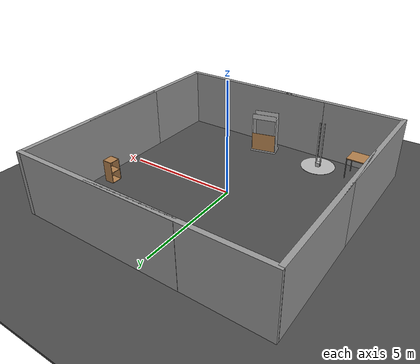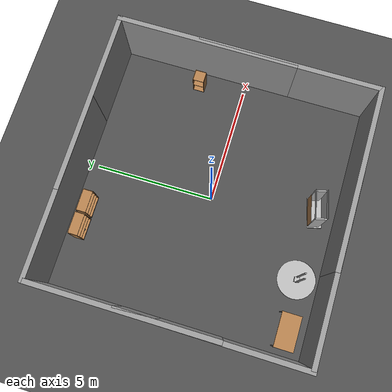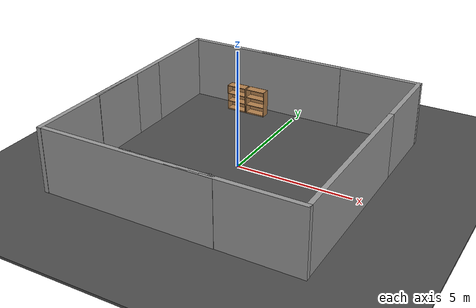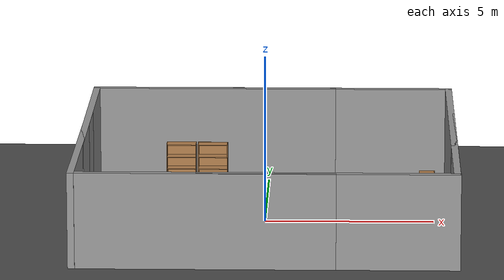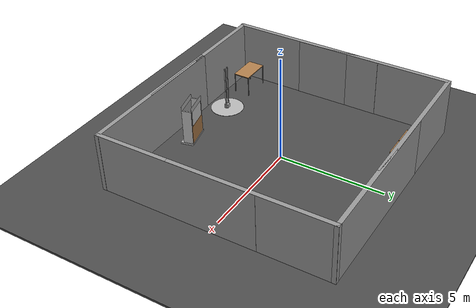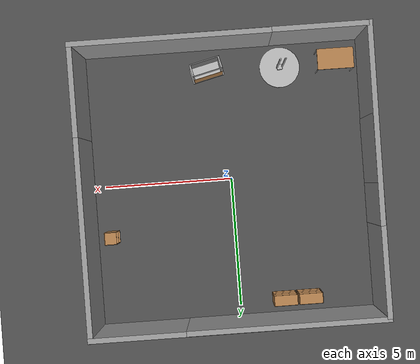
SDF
<sdf version="1.6">
 <world name="default">
  <light name="sun" type="directional">
   <pose>0 0 15 0 -0 0</pose>
   <diffuse>1 1 1 1</diffuse>
   <specular>0.1 0.1 0.1 1</specular>
   <attenuation>
    <range>1000</range>
    <constant>0.9</constant>
    <linear>0.01</linear>
    <quadratic>0.001</quadratic>
   </attenuation>
   <direction>-0.5 0.5 -1</direction>
  </light>
  <model name="ground_plane">
   <static>1</static>
   <link name="link">
    <collision name="collision">
     <geometry><plane><normal>0 0 1</normal><size>100 100</size></plane></geometry>
     <surface><friction><ode><mu>100</mu><mu2>50</mu2></ode></friction></surface>
    </collision>
    <visual name="visual">
     <transparency>1</transparency>
     <cast_shadows>0</cast_shadows>
     <geometry><plane><normal>0 0 1</normal><size>100 100</size></plane></geometry>
     <material>
      <script><uri>file://media/materials/scripts/gazebo.material</uri><name>Gazebo/Grey</name></script>
     </material>
    </visual>
   </link>
  </model>
  <gravity>0 0 -9.8</gravity>
  <magnetic_field>6e-06 2.3e-05 -4.2e-05</magnetic_field>
  <atmosphere type="adiabatic"/>
  <physics name="default_physics" default="0" type="ode">
   <max_step_size>0.001</max_step_size>
   <real_time_factor>1</real_time_factor>
   <real_time_update_rate>1000</real_time_update_rate>
  </physics>
  <scene><ambient>0.4 0.4 0.4 1</ambient><background>0.7 0.7 0.7 1</background><shadows>1</shadows></scene>
  <spherical_coordinates>
   <surface_model>EARTH_WGS84</surface_model>
   <latitude_deg>0</latitude_deg>
   <longitude_deg>0</longitude_deg>
   <elevation>0</elevation>
   <heading_deg>0</heading_deg>
  </spherical_coordinates>
  <model name="asphalt_plane">
   <static>1</static>
   <link name="link">
    <collision name="collision"><geometry><box><size>36.1545 36.4545 0.1</size></box></geometry></collision>
    <visual name="visual">
     <cast_shadows>0</cast_shadows>
     <geometry><box><size>36.1545 36.4545 0.1</size></box></geometry>
     <material>
      <script>
       <uri>model://asphalt_plane/materials/scripts</uri>
       <uri>model://asphalt_plane/materials/textures</uri>
       <name>vrc/asphalt</name>
      </script>
     </material>
    </visual>
   </link>
   <pose>0.103613 0.066968 -0.05 0 -0 0</pose>
  </model>
  <model name="table">
   <static>0</static>
   <link name="link">
    <collision name="surface">
     <pose>0 0 1 0 -0 0</pose>
     <geometry><box><size>1.5 0.8 0.03</size></box></geometry>
     <surface><friction><ode><mu>0.6</mu><mu2>0.6</mu2></ode></friction></surface>
    </collision>
    <visual name="visual1">
     <pose>0 0 1 0 -0 0</pose>
     <geometry><box><size>1.4 0.8 0.04</size></box></geometry>
     <material>
      <script><uri>file://media/materials/scripts/gazebo.material</uri><name>Gazebo/Wood</name></script>
     </material>
    </visual>
    <collision name="front_left_leg">
     <pose>0.68 0.38 0.5 0 -0 0</pose>
     <geometry><cylinder><radius>0.02</radius><length>1</length></cylinder></geometry>
    </collision>
    <visual name="front_left_leg">
     <pose>0.68 0.38 0.5 0 -0 0</pose>
     <geometry><cylinder><radius>0.02</radius><length>1</length></cylinder></geometry>
     <material>
      <script><uri>file://media/materials/scripts/gazebo.material</uri><name>Gazebo/Grey</name></script>
     </material>
    </visual>
    <collision name="front_right_leg">
     <pose>0.68 -0.38 0.5 0 -0 0</pose>
     <geometry><cylinder><radius>0.02</radius><length>1</length></cylinder></geometry>
    </collision>
    <visual name="front_right_leg">
     <pose>0.68 -0.38 0.5 0 -0 0</pose>
     <geometry><cylinder><radius>0.02</radius><length>1</length></cylinder></geometry>
     <material>
      <script><uri>file://media/materials/scripts/gazebo.material</uri><name>Gazebo/Grey</name></script>
     </material>
    </visual>
    <collision name="back_right_leg">
     <pose>-0.68 -0.38 0.5 0 -0 0</pose>
     <geometry><cylinder><radius>0.02</radius><length>1</length></cylinder></geometry>
    </collision>
    <visual name="back_right_leg">
     <pose>-0.68 -0.38 0.5 0 -0 0</pose>
     <geometry><cylinder><radius>0.02</radius><length>1</length></cylinder></geometry>
     <material>
      <script><uri>file://media/materials/scripts/gazebo.material</uri><name>Gazebo/Grey</name></script>
     </material>
    </visual>
    <collision name="back_left_leg">
     <pose>-0.68 0.38 0.5 0 -0 0</pose>
     <geometry><cylinder><radius>0.02</radius><length>1</length></cylinder></geometry>
    </collision>
    <visual name="back_left_leg">
     <pose>-0.68 0.38 0.5 0 -0 0</pose>
     <geometry><cylinder><radius>0.02</radius><length>1</length></cylinder></geometry>
     <material>
      <script><uri>file://media/materials/scripts/gazebo.material</uri><name>Gazebo/Grey</name></script>
     </material>
    </visual>
    <inertial>
     <inertia><ixx>1</ixx><ixy>0</ixy><ixz>0</ixz><iyy>1</iyy><iyz>0</iyz><izz>1</izz></inertia>
     <mass>1</mass>
    </inertial>
   </link>
   <pose>-4.32084 -4.34806 0 0 0 -0.002675</pose>
  </model>
  <model name="stone_10_2_5_1cm">
   <link name="link">
    <pose>0 0 0.005 0 -0 0</pose>
    <inertial>
     <mass>0.0628</mass>
     <inertia>
      <ixx>3.79417e-06</ixx>
      <ixy>0</ixy>
      <ixz>0</ixz>
      <iyy>5.28567e-05</iyy>
      <iyz>0</iyz>
      <izz>5.56042e-05</izz>
     </inertia>
    </inertial>
    <collision name="collision">
     <geometry><box><size>0.1 0.025 0.01</size></box></geometry>
     <surface>
      <contact>
       <poissons_ratio>0.15</poissons_ratio>
       <elastic_modulus>8e+10</elastic_modulus>
       <ode><kp>100000</kp><kd>100</kd><max_vel>100</max_vel><min_depth>0.001</min_depth></ode>
      </contact>
      <friction>
       <torsional>
        <coefficient>1</coefficient>
        <use_patch_radius>0</use_patch_radius>
        <surface_radius>0.01</surface_radius>
       </torsional>
      </friction>
     </surface>
    </collision>
    <visual name="visual">
     <geometry><box><size>0.1 0.025 0.01</size></box></geometry>
     <material>
      <script><uri>file://media/materials/scripts/gazebo.material</uri><name>Gazebo/Grey</name></script>
     </material>
    </visual>
   </link>
   <pose>8.5e-05 0.000215 -0.001001 0 1e-06 0.002859</pose>
  </model>
  <model name="beer">
   <link name="link">
    <pose>0 0 0.115 0 -0 0</pose>
    <inertial>
     <mass>0.39</mass>
     <inertia><ixx>0.00058</ixx><ixy>0</ixy><ixz>0</ixz><iyy>0.00058</iyy><iyz>0</iyz><izz>0.00019</izz></inertia>
    </inertial>
    <collision name="collision">
     <geometry><cylinder><radius>0.055</radius><length>0.23</length></cylinder></geometry>
    </collision>
    <visual name="visual">
     <geometry><cylinder><radius>0.055</radius><length>0.23</length></cylinder></geometry>
     <material>
      <script>
       <uri>model://beer/materials/scripts</uri>
       <uri>model://beer/materials/textures</uri>
       <name>Beer/Diffuse</name>
      </script>
     </material>
    </visual>
   </link>
   <pose>-2.7677 4.70917 0.060005 2.4e-05 9.1e-05 1.60843</pose>
  </model>
  <model name="bookshelf">
   <static>1</static>
   <link name="link">
    <inertial><mass>1</mass></inertial>
    <collision name="back">
     <pose>0 0.005 0.6 0 -0 0</pose>
     <geometry><box><size>0.9 0.01 1.2</size></box></geometry>
    </collision>
    <visual name="visual1">
     <pose>0 0.005 0.6 0 -0 0</pose>
     <geometry><box><size>0.9 0.01 1.2</size></box></geometry>
     <material>
      <script><uri>file://media/materials/scripts/gazebo.material</uri><name>Gazebo/Wood</name></script>
     </material>
    </visual>
    <collision name="left_side">
     <pose>0.45 -0.195 0.6 0 -0 0</pose>
     <geometry><box><size>0.02 0.4 1.2</size></box></geometry>
    </collision>
    <visual name="visual2">
     <pose>0.45 -0.195 0.6 0 -0 0</pose>
     <geometry><box><size>0.02 0.4 1.2</size></box></geometry>
     <material>
      <script><uri>file://media/materials/scripts/gazebo.material</uri><name>Gazebo/Wood</name></script>
     </material>
    </visual>
    <collision name="right_side">
     <pose>-0.45 -0.195 0.6 0 -0 0</pose>
     <geometry><box><size>0.02 0.4 1.2</size></box></geometry>
    </collision>
    <visual name="visual3">
     <pose>-0.45 -0.195 0.6 0 -0 0</pose>
     <geometry><box><size>0.02 0.4 1.2</size></box></geometry>
     <material>
      <script><uri>file://media/materials/scripts/gazebo.material</uri><name>Gazebo/Wood</name></script>
     </material>
    </visual>
    <collision name="bottom">
     <pose>0 -0.195 0.03 0 -0 0</pose>
     <geometry><box><size>0.88 0.4 0.06</size></box></geometry>
    </collision>
    <visual name="visual4">
     <pose>0 -0.195 0.03 0 -0 0</pose>
     <geometry><box><size>0.88 0.4 0.06</size></box></geometry>
     <material>
      <script><uri>file://media/materials/scripts/gazebo.material</uri><name>Gazebo/Wood</name></script>
     </material>
    </visual>
    <collision name="top">
     <pose>0 -0.195 1.19 0 -0 0</pose>
     <geometry><box><size>0.88 0.4 0.02</size></box></geometry>
    </collision>
    <visual name="visual5">
     <pose>0 -0.195 1.19 0 -0 0</pose>
     <geometry><box><size>0.88 0.4 0.02</size></box></geometry>
     <material>
      <script><uri>file://media/materials/scripts/gazebo.material</uri><name>Gazebo/Wood</name></script>
     </material>
    </visual>
    <collision name="low_shelf">
     <pose>0 -0.195 0.43 0 -0 0</pose>
     <geometry><box><size>0.88 0.4 0.02</size></box></geometry>
    </collision>
    <visual name="visual6">
     <pose>0 -0.195 0.43 0 -0 0</pose>
     <geometry><box><size>0.88 0.4 0.02</size></box></geometry>
     <material>
      <script><uri>file://media/materials/scripts/gazebo.material</uri><name>Gazebo/Wood</name></script>
     </material>
    </visual>
    <collision name="high_shelf">
     <pose>0 -0.195 0.8 0 -0 0</pose>
     <geometry><box><size>0.88 0.4 0.02</size></box></geometry>
    </collision>
    <visual name="visual7">
     <pose>0 -0.195 0.8 0 -0 0</pose>
     <geometry><box><size>0.88 0.4 0.02</size></box></geometry>
     <material>
      <script><uri>file://media/materials/scripts/gazebo.material</uri><name>Gazebo/Wood</name></script>
     </material>
    </visual>
   </link>
   <pose>-1.74722 4.98525 0 0 -0 0</pose>
  </model>
  <model name="bookshelf_0">
   <static>1</static>
   <link name="link">
    <inertial><mass>1</mass></inertial>
    <collision name="back">
     <pose>0 0.005 0.6 0 -0 0</pose>
     <geometry><box><size>0.9 0.01 1.2</size></box></geometry>
    </collision>
    <visual name="visual1">
     <pose>0 0.005 0.6 0 -0 0</pose>
     <geometry><box><size>0.9 0.01 1.2</size></box></geometry>
     <material>
      <script><uri>file://media/materials/scripts/gazebo.material</uri><name>Gazebo/Wood</name></script>
     </material>
    </visual>
    <collision name="left_side">
     <pose>0.45 -0.195 0.6 0 -0 0</pose>
     <geometry><box><size>0.02 0.4 1.2</size></box></geometry>
    </collision>
    <visual name="visual2">
     <pose>0.45 -0.195 0.6 0 -0 0</pose>
     <geometry><box><size>0.02 0.4 1.2</size></box></geometry>
     <material>
      <script><uri>file://media/materials/scripts/gazebo.material</uri><name>Gazebo/Wood</name></script>
     </material>
    </visual>
    <collision name="right_side">
     <pose>-0.45 -0.195 0.6 0 -0 0</pose>
     <geometry><box><size>0.02 0.4 1.2</size></box></geometry>
    </collision>
    <visual name="visual3">
     <pose>-0.45 -0.195 0.6 0 -0 0</pose>
     <geometry><box><size>0.02 0.4 1.2</size></box></geometry>
     <material>
      <script><uri>file://media/materials/scripts/gazebo.material</uri><name>Gazebo/Wood</name></script>
     </material>
    </visual>
    <collision name="bottom">
     <pose>0 -0.195 0.03 0 -0 0</pose>
     <geometry><box><size>0.88 0.4 0.06</size></box></geometry>
    </collision>
    <visual name="visual4">
     <pose>0 -0.195 0.03 0 -0 0</pose>
     <geometry><box><size>0.88 0.4 0.06</size></box></geometry>
     <material>
      <script><uri>file://media/materials/scripts/gazebo.material</uri><name>Gazebo/Wood</name></script>
     </material>
    </visual>
    <collision name="top">
     <pose>0 -0.195 1.19 0 -0 0</pose>
     <geometry><box><size>0.88 0.4 0.02</size></box></geometry>
    </collision>
    <visual name="visual5">
     <pose>0 -0.195 1.19 0 -0 0</pose>
     <geometry><box><size>0.88 0.4 0.02</size></box></geometry>
     <material>
      <script><uri>file://media/materials/scripts/gazebo.material</uri><name>Gazebo/Wood</name></script>
     </material>
    </visual>
    <collision name="low_shelf">
     <pose>0 -0.195 0.43 0 -0 0</pose>
     <geometry><box><size>0.88 0.4 0.02</size></box></geometry>
    </collision>
    <visual name="visual6">
     <pose>0 -0.195 0.43 0 -0 0</pose>
     <geometry><box><size>0.88 0.4 0.02</size></box></geometry>
     <material>
      <script><uri>file://media/materials/scripts/gazebo.material</uri><name>Gazebo/Wood</name></script>
     </material>
    </visual>
    <collision name="high_shelf">
     <pose>0 -0.195 0.8 0 -0 0</pose>
     <geometry><box><size>0.88 0.4 0.02</size></box></geometry>
    </collision>
    <visual name="visual7">
     <pose>0 -0.195 0.8 0 -0 0</pose>
     <geometry><box><size>0.88 0.4 0.02</size></box></geometry>
     <material>
      <script><uri>file://media/materials/scripts/gazebo.material</uri><name>Gazebo/Wood</name></script>
     </material>
    </visual>
   </link>
   <pose>-2.71562 4.98367 0 0 -0 0</pose>
  </model>
  <model name="frc2016_drawbridge_0">
   <link name="base">
    <inertial>
     <mass>10</mass>
     <pose>0 0 1 0 -0 0</pose>
     <inertia><ixx>3.64907</ixx><ixy>0</ixy><ixz>0</ixz><iyy>4.67075</iyy><iyz>0</iyz><izz>1.66649</izz></inertia>
    </inertial>
    <visual name="platform">
     <pose>0 0 0.0425 0 -0 0</pose>
     <geometry><box><size>1.27 0.5969 0.085</size></box></geometry>
    </visual>
    <collision name="platform">
     <pose>0 0 0.0425 0 -0 0</pose>
     <geometry><box><size>1.27 0.5969 0.085</size></box></geometry>
    </collision>
    <visual name="right_wall">
     <pose>0.55879 0.04444 0.889 0 -0 0</pose>
     <geometry><box><size>0.05715 0.45698 1.77165</size></box></geometry>
    </visual>
    <collision name="right_wall">
     <pose>0.55879 0.04444 0.889 0 -0 0</pose>
     <geometry><box><size>0.05715 0.45698 1.77165</size></box></geometry>
    </collision>
    <visual name="left_wall">
     <pose>-0.55879 0.04444 0.889 0 -0 0</pose>
     <geometry><box><size>0.05715 0.45698 1.77165</size></box></geometry>
    </visual>
    <collision name="left_wall">
     <pose>-0.55879 0.04444 0.889 0 -0 0</pose>
     <geometry><box><size>0.05715 0.45698 1.77165</size></box></geometry>
    </collision>
    <visual name="front_upper_wall">
     <pose>0 0.27611 1.84286 0 -0 0</pose>
     <geometry><box><size>1.1557 0.006347 0.254</size></box></geometry>
    </visual>
    <collision name="front_upper_wall">
     <pose>0 0.27611 1.84286 0 -0 0</pose>
     <geometry><box><size>1.1557 0.006347 0.254</size></box></geometry>
    </collision>
    <visual name="back_upper_wall">
     <pose>0 -0.18722 1.84286 0 -0 0</pose>
     <geometry><box><size>1.1557 0.006347 0.254</size></box></geometry>
    </visual>
    <collision name="back_upper_wall">
     <pose>0 -0.18722 1.84286 0 -0 0</pose>
     <geometry><box><size>1.1557 0.006347 0.254</size></box></geometry>
    </collision>
   </link>
   <link name="bridge">
    <pose>0 0.28245 0.50577 0 -0 0</pose>
    <inertial>
     <mass>2</mass>
     <pose>0 -0.28245 -0.50577 0 -0 0</pose>
     <inertia>
      <ixx>0.139361</ixx>
      <ixy>0</ixy>
      <ixz>0</ixz>
      <iyy>0.357088</iyy>
      <iyz>0</iyz>
      <izz>0.217741</izz>
     </inertia>
    </inertial>
    <visual name="visual">
     <geometry><box><size>1.14298 0.006347 0.9144</size></box></geometry>
     <material><script><name>Gazebo/WoodFloor</name><uri>__default__</uri></script></material>
    </visual>
    <collision name="collision"><geometry><box><size>1.14298 0.006347 0.9144</size></box></geometry></collision>
   </link>
   <joint name="bridge_joint" type="revolute">
    <pose>0 0 -0.4172 0 -0 0</pose>
    <parent>base</parent>
    <child>bridge</child>
    <axis>
     <xyz>1 0 0</xyz>
     <limit><lower>-2</lower><upper>0</upper></limit>
     <use_parent_model_frame>0</use_parent_model_frame>
     <dynamics><spring_reference>0</spring_reference><spring_stiffness>0</spring_stiffness></dynamics>
    </axis>
   </joint>
   <pose>0.67521 -4.30878 0 0 1e-06 0.236017</pose>
  </model>
  <model name="cabinet">
   <static>1</static>
   <link name="cabinet_bottom_plate">
    <inertial>
     <pose>0 0 -1 0 -0 0</pose>
     <inertia><ixx>2.05</ixx><ixy>0</ixy><ixz>0</ixz><iyy>2.05</iyy><iyz>0</iyz><izz>2.05</izz></inertia>
     <mass>25</mass>
    </inertial>
    <collision name="cabinet_bottom_plate_geom">
     <pose>0 0 0.01 0 -0 0</pose>
     <geometry><box><size>0.45 0.45 0.02</size></box></geometry>
    </collision>
    <visual name="cabinet_bottom_plate_geom_visual">
     <pose>0 0 0.01 0 -0 0</pose>
     <geometry><box><size>0.45 0.45 0.02</size></box></geometry>
     <material>
      <script><uri>file://media/materials/scripts/gazebo.material</uri><name>Gazebo/Wood</name></script>
     </material>
    </visual>
    <collision name="cabinet_bottom_plate_geom_cabinet_back_plate">
     <pose>0.235 0 0.51 0 -0 0</pose>
     <geometry><box><size>0.02 0.45 1.02</size></box></geometry>
    </collision>
    <visual name="cabinet_bottom_plate_geom_cabinet_back_plate_visual">
     <pose>0.235 0 0.51 0 -0 0</pose>
     <geometry><box><size>0.02 0.45 1.02</size></box></geometry>
     <material>
      <script><uri>file://media/materials/scripts/gazebo.material</uri><name>Gazebo/Wood</name></script>
     </material>
    </visual>
    <collision name="cabinet_bottom_plate_geom_cabinet_left_plate">
     <pose>0 0.235 0.51 0 -0 0</pose>
     <geometry><box><size>0.45 0.02 1.02</size></box></geometry>
    </collision>
    <visual name="cabinet_bottom_plate_geom_cabinet_left_plate_visual">
     <pose>0 0.235 0.51 0 -0 0</pose>
     <geometry><box><size>0.45 0.02 1.02</size></box></geometry>
     <material>
      <script><uri>file://media/materials/scripts/gazebo.material</uri><name>Gazebo/Wood</name></script>
     </material>
    </visual>
    <collision name="cabinet_bottom_plate_geom_cabinet_middle_plate">
     <pose>0 0 0.51 0 -0 0</pose>
     <geometry><box><size>0.45 0.45 0.02</size></box></geometry>
    </collision>
    <visual name="cabinet_bottom_plate_geom_cabinet_middle_plate_visual">
     <pose>0 0 0.51 0 -0 0</pose>
     <geometry><box><size>0.45 0.45 0.02</size></box></geometry>
     <material>
      <script><uri>file://media/materials/scripts/gazebo.material</uri><name>Gazebo/Wood</name></script>
     </material>
    </visual>
    <collision name="cabinet_bottom_plate_geom_cabinet_right_plate">
     <pose>0 -0.235 0.51 0 -0 0</pose>
     <geometry><box><size>0.45 0.02 1.02</size></box></geometry>
    </collision>
    <visual name="cabinet_bottom_plate_geom_cabinet_right_plate_visual">
     <pose>0 -0.235 0.51 0 -0 0</pose>
     <geometry><box><size>0.45 0.02 1.02</size></box></geometry>
     <material>
      <script><uri>file://media/materials/scripts/gazebo.material</uri><name>Gazebo/Wood</name></script>
     </material>
    </visual>
    <collision name="cabinet_bottom_plate_geom_cabinet_top_plate">
     <pose>0 0 1.01 0 -0 0</pose>
     <geometry><box><size>0.45 0.45 0.02</size></box></geometry>
    </collision>
    <visual name="cabinet_bottom_plate_geom_cabinet_top_plate_visual">
     <pose>0 0 1.01 0 -0 0</pose>
     <geometry><box><size>0.45 0.45 0.02</size></box></geometry>
     <material>
      <script><uri>file://media/materials/scripts/gazebo.material</uri><name>Gazebo/Wood</name></script>
     </material>
    </visual>
   </link>
   <pose>4.81488 1.96092 0 0 -0 0</pose>
  </model>
  <model name="grey_wall_clone_0">
   <link name="link">
    <pose>0 0 1.4 0 -0 0</pose>
    <inertial>
     <mass>1</mass>
     <inertia><ixx>1</ixx><ixy>0</ixy><ixz>0</ixz><iyy>1</iyy><iyz>0</iyz><izz>1</izz></inertia>
    </inertial>
    <visual name="visual">
     <cast_shadows>0</cast_shadows>
     <geometry><box><size>7.5 0.2 2.8</size></box></geometry>
     <material>
      <script>
       <uri>model://grey_wall/materials/scripts</uri>
       <uri>model://grey_wall/materials/textures</uri>
       <name>vrc/grey_wall</name>
      </script>
      <ambient>0 0 0 1</ambient>
      <diffuse>0 0 0 1</diffuse>
      <specular>0 0 0 1</specular>
      <emissive>0 0 0 1</emissive>
      <shader type="vertex"><normal_map>__default__</normal_map></shader>
     </material>
    </visual>
    <collision name="collision">
     <geometry><box><size>7.5 0.2 2.8</size></box></geometry>
     <surface>
      <friction>
       <ode><mu>1</mu><mu2>1</mu2><fdir1>0 0 0</fdir1><slip1>0</slip1><slip2>0</slip2></ode>
       <torsional>
        <coefficient>1</coefficient>
        <patch_radius>0</patch_radius>
        <surface_radius>0</surface_radius>
        <use_patch_radius>1</use_patch_radius>
        <ode><slip>0</slip></ode>
       </torsional>
      </friction>
      <bounce><restitution_coefficient>0</restitution_coefficient><threshold>1e+06</threshold></bounce>
      <contact>
       <collide_without_contact>0</collide_without_contact>
       <collide_without_contact_bitmask>1</collide_without_contact_bitmask>
       <collide_bitmask>1</collide_bitmask>
       <ode>
        <soft_cfm>0</soft_cfm>
        <soft_erp>0.2</soft_erp>
        <kp>1e+13</kp>
        <kd>1</kd>
        <max_vel>0.01</max_vel>
        <min_depth>0</min_depth>
       </ode>
       <bullet>
        <split_impulse>1</split_impulse>
        <split_impulse_penetration_threshold>-0.01</split_impulse_penetration_threshold>
        <soft_cfm>0</soft_cfm>
        <soft_erp>0.2</soft_erp>
        <kp>1e+13</kp>
        <kd>1</kd>
       </bullet>
      </contact>
     </surface>
    </collision>
   </link>
   <static>1</static>
   <pose>1.91177 -5.27965 0 0 -0 0</pose>
  </model>
  <model name="grey_wall_2">
   <link name="link">
    <pose>0 0 1.4 0 -0 0</pose>
    <inertial>
     <mass>1</mass>
     <inertia><ixx>1</ixx><ixy>0</ixy><ixz>0</ixz><iyy>1</iyy><iyz>0</iyz><izz>1</izz></inertia>
    </inertial>
    <visual name="visual">
     <cast_shadows>0</cast_shadows>
     <geometry><box><size>7.5 0.2 2.8</size></box></geometry>
     <material>
      <script>
       <uri>model://grey_wall/materials/scripts</uri>
       <uri>model://grey_wall/materials/textures</uri>
       <name>vrc/grey_wall</name>
      </script>
      <ambient>0 0 0 1</ambient>
      <diffuse>0 0 0 1</diffuse>
      <specular>0 0 0 1</specular>
      <emissive>0 0 0 1</emissive>
      <shader type="vertex"><normal_map>__default__</normal_map></shader>
     </material>
    </visual>
    <collision name="collision">
     <geometry><box><size>7.5 0.2 2.8</size></box></geometry>
     <surface>
      <friction>
       <ode><mu>1</mu><mu2>1</mu2><fdir1>0 0 0</fdir1><slip1>0</slip1><slip2>0</slip2></ode>
       <torsional>
        <coefficient>1</coefficient>
        <patch_radius>0</patch_radius>
        <surface_radius>0</surface_radius>
        <use_patch_radius>1</use_patch_radius>
        <ode><slip>0</slip></ode>
       </torsional>
      </friction>
      <bounce><restitution_coefficient>0</restitution_coefficient><threshold>1e+06</threshold></bounce>
      <contact>
       <collide_without_contact>0</collide_without_contact>
       <collide_without_contact_bitmask>1</collide_without_contact_bitmask>
       <collide_bitmask>1</collide_bitmask>
       <ode>
        <soft_cfm>0</soft_cfm>
        <soft_erp>0.2</soft_erp>
        <kp>1e+13</kp>
        <kd>1</kd>
        <max_vel>0.01</max_vel>
        <min_depth>0</min_depth>
       </ode>
       <bullet>
        <split_impulse>1</split_impulse>
        <split_impulse_penetration_threshold>-0.01</split_impulse_penetration_threshold>
        <soft_cfm>0</soft_cfm>
        <soft_erp>0.2</soft_erp>
        <kp>1e+13</kp>
        <kd>1</kd>
       </bullet>
      </contact>
     </surface>
    </collision>
   </link>
   <static>1</static>
   <pose>-1.62156 -5.28936 0 0 -0 0</pose>
  </model>
  <model name="grey_wall_1_clone_clone_0">
   <link name="link">
    <pose>0 0 1.4 0 -0 0</pose>
    <inertial>
     <mass>1</mass>
     <inertia><ixx>1</ixx><ixy>0</ixy><ixz>0</ixz><iyy>1</iyy><iyz>0</iyz><izz>1</izz></inertia>
    </inertial>
    <visual name="visual">
     <cast_shadows>0</cast_shadows>
     <geometry><box><size>7.5 0.2 2.8</size></box></geometry>
     <material>
      <script>
       <uri>model://grey_wall/materials/scripts</uri>
       <uri>model://grey_wall/materials/textures</uri>
       <name>vrc/grey_wall</name>
      </script>
      <ambient>0 0 0 1</ambient>
      <diffuse>0 0 0 1</diffuse>
      <specular>0 0 0 1</specular>
      <emissive>0 0 0 1</emissive>
      <shader type="vertex"><normal_map>__default__</normal_map></shader>
     </material>
    </visual>
    <collision name="collision">
     <geometry><box><size>7.5 0.2 2.8</size></box></geometry>
     <surface>
      <friction>
       <ode><mu>1</mu><mu2>1</mu2><fdir1>0 0 0</fdir1><slip1>0</slip1><slip2>0</slip2></ode>
       <torsional>
        <coefficient>1</coefficient>
        <patch_radius>0</patch_radius>
        <surface_radius>0</surface_radius>
        <use_patch_radius>1</use_patch_radius>
        <ode><slip>0</slip></ode>
       </torsional>
      </friction>
      <bounce><restitution_coefficient>0</restitution_coefficient><threshold>1e+06</threshold></bounce>
      <contact>
       <collide_without_contact>0</collide_without_contact>
       <collide_without_contact_bitmask>1</collide_without_contact_bitmask>
       <collide_bitmask>1</collide_bitmask>
       <ode>
        <soft_cfm>0</soft_cfm>
        <soft_erp>0.2</soft_erp>
        <kp>1e+13</kp>
        <kd>1</kd>
        <max_vel>0.01</max_vel>
        <min_depth>0</min_depth>
       </ode>
       <bullet>
        <split_impulse>1</split_impulse>
        <split_impulse_penetration_threshold>-0.01</split_impulse_penetration_threshold>
        <soft_cfm>0</soft_cfm>
        <soft_erp>0.2</soft_erp>
        <kp>1e+13</kp>
        <kd>1</kd>
       </bullet>
      </contact>
     </surface>
    </collision>
   </link>
   <static>1</static>
   <pose>-5.37299 -1.64933 0 0 -0 1.5651</pose>
  </model>
  <model name="grey_wall_1_clone_clone_clone_0">
   <link name="link">
    <pose>0 0 1.4 0 -0 0</pose>
    <inertial>
     <mass>1</mass>
     <inertia><ixx>1</ixx><ixy>0</ixy><ixz>0</ixz><iyy>1</iyy><iyz>0</iyz><izz>1</izz></inertia>
    </inertial>
    <visual name="visual">
     <cast_shadows>0</cast_shadows>
     <geometry><box><size>7.5 0.2 2.8</size></box></geometry>
     <material>
      <script>
       <uri>model://grey_wall/materials/scripts</uri>
       <uri>model://grey_wall/materials/textures</uri>
       <name>vrc/grey_wall</name>
      </script>
      <ambient>0 0 0 1</ambient>
      <diffuse>0 0 0 1</diffuse>
      <specular>0 0 0 1</specular>
      <emissive>0 0 0 1</emissive>
      <shader type="vertex"><normal_map>__default__</normal_map></shader>
     </material>
    </visual>
    <collision name="collision">
     <geometry><box><size>7.5 0.2 2.8</size></box></geometry>
     <surface>
      <friction>
       <ode><mu>1</mu><mu2>1</mu2><fdir1>0 0 0</fdir1><slip1>0</slip1><slip2>0</slip2></ode>
       <torsional>
        <coefficient>1</coefficient>
        <patch_radius>0</patch_radius>
        <surface_radius>0</surface_radius>
        <use_patch_radius>1</use_patch_radius>
        <ode><slip>0</slip></ode>
       </torsional>
      </friction>
      <bounce><restitution_coefficient>0</restitution_coefficient><threshold>1e+06</threshold></bounce>
      <contact>
       <collide_without_contact>0</collide_without_contact>
       <collide_without_contact_bitmask>1</collide_without_contact_bitmask>
       <collide_bitmask>1</collide_bitmask>
       <ode>
        <soft_cfm>0</soft_cfm>
        <soft_erp>0.2</soft_erp>
        <kp>1e+13</kp>
        <kd>1</kd>
        <max_vel>0.01</max_vel>
        <min_depth>0</min_depth>
       </ode>
       <bullet>
        <split_impulse>1</split_impulse>
        <split_impulse_penetration_threshold>-0.01</split_impulse_penetration_threshold>
        <soft_cfm>0</soft_cfm>
        <soft_erp>0.2</soft_erp>
        <kp>1e+13</kp>
        <kd>1</kd>
       </bullet>
      </contact>
     </surface>
    </collision>
   </link>
   <static>1</static>
   <pose>-5.3613 1.73869 0 0 -0 1.57134</pose>
  </model>
  <model name="grey_wall_0_0">
   <link name="link">
    <pose>0 0 1.4 0 -0 0</pose>
    <inertial>
     <mass>1</mass>
     <inertia><ixx>1</ixx><ixy>0</ixy><ixz>0</ixz><iyy>1</iyy><iyz>0</iyz><izz>1</izz></inertia>
    </inertial>
    <visual name="visual">
     <cast_shadows>0</cast_shadows>
     <geometry><box><size>7.5 0.2 2.8</size></box></geometry>
     <material>
      <script>
       <uri>model://grey_wall/materials/scripts</uri>
       <uri>model://grey_wall/materials/textures</uri>
       <name>vrc/grey_wall</name>
      </script>
      <ambient>0 0 0 1</ambient>
      <diffuse>0 0 0 1</diffuse>
      <specular>0 0 0 1</specular>
      <emissive>0 0 0 1</emissive>
      <shader type="vertex"><normal_map>__default__</normal_map></shader>
     </material>
    </visual>
    <collision name="collision">
     <geometry><box><size>7.5 0.2 2.8</size></box></geometry>
     <surface>
      <friction>
       <ode><mu>1</mu><mu2>1</mu2><fdir1>0 0 0</fdir1><slip1>0</slip1><slip2>0</slip2></ode>
       <torsional>
        <coefficient>1</coefficient>
        <patch_radius>0</patch_radius>
        <surface_radius>0</surface_radius>
        <use_patch_radius>1</use_patch_radius>
        <ode><slip>0</slip></ode>
       </torsional>
      </friction>
      <bounce><restitution_coefficient>0</restitution_coefficient><threshold>1e+06</threshold></bounce>
      <contact>
       <collide_without_contact>0</collide_without_contact>
       <collide_without_contact_bitmask>1</collide_without_contact_bitmask>
       <collide_bitmask>1</collide_bitmask>
       <ode>
        <soft_cfm>0</soft_cfm>
        <soft_erp>0.2</soft_erp>
        <kp>1e+13</kp>
        <kd>1</kd>
        <max_vel>0.01</max_vel>
        <min_depth>0</min_depth>
       </ode>
       <bullet>
        <split_impulse>1</split_impulse>
        <split_impulse_penetration_threshold>-0.01</split_impulse_penetration_threshold>
        <soft_cfm>0</soft_cfm>
        <soft_erp>0.2</soft_erp>
        <kp>1e+13</kp>
        <kd>1</kd>
       </bullet>
      </contact>
     </surface>
    </collision>
   </link>
   <static>1</static>
   <pose>-1.70683 5.49413 0 0 -0 0</pose>
  </model>
  <model name="grey_wall_0_clone_0">
   <link name="link">
    <pose>0 0 1.4 0 -0 0</pose>
    <inertial>
     <mass>1</mass>
     <inertia><ixx>1</ixx><ixy>0</ixy><ixz>0</ixz><iyy>1</iyy><iyz>0</iyz><izz>1</izz></inertia>
    </inertial>
    <visual name="visual">
     <cast_shadows>0</cast_shadows>
     <geometry><box><size>7.5 0.2 2.8</size></box></geometry>
     <material>
      <script>
       <uri>model://grey_wall/materials/scripts</uri>
       <uri>model://grey_wall/materials/textures</uri>
       <name>vrc/grey_wall</name>
      </script>
      <ambient>0 0 0 1</ambient>
      <diffuse>0 0 0 1</diffuse>
      <specular>0 0 0 1</specular>
      <emissive>0 0 0 1</emissive>
      <shader type="vertex"><normal_map>__default__</normal_map></shader>
     </material>
    </visual>
    <collision name="collision">
     <geometry><box><size>7.5 0.2 2.8</size></box></geometry>
     <surface>
      <friction>
       <ode><mu>1</mu><mu2>1</mu2><fdir1>0 0 0</fdir1><slip1>0</slip1><slip2>0</slip2></ode>
       <torsional>
        <coefficient>1</coefficient>
        <patch_radius>0</patch_radius>
        <surface_radius>0</surface_radius>
        <use_patch_radius>1</use_patch_radius>
        <ode><slip>0</slip></ode>
       </torsional>
      </friction>
      <bounce><restitution_coefficient>0</restitution_coefficient><threshold>1e+06</threshold></bounce>
      <contact>
       <collide_without_contact>0</collide_without_contact>
       <collide_without_contact_bitmask>1</collide_without_contact_bitmask>
       <collide_bitmask>1</collide_bitmask>
       <ode>
        <soft_cfm>0</soft_cfm>
        <soft_erp>0.2</soft_erp>
        <kp>1e+13</kp>
        <kd>1</kd>
        <max_vel>0.01</max_vel>
        <min_depth>0</min_depth>
       </ode>
       <bullet>
        <split_impulse>1</split_impulse>
        <split_impulse_penetration_threshold>-0.01</split_impulse_penetration_threshold>
        <soft_cfm>0</soft_cfm>
        <soft_erp>0.2</soft_erp>
        <kp>1e+13</kp>
        <kd>1</kd>
       </bullet>
      </contact>
     </surface>
    </collision>
   </link>
   <static>1</static>
   <pose>1.88901 5.50227 0 0 -0 0</pose>
  </model>
  <model name="grey_wall_1_0">
   <link name="link">
    <pose>0 0 1.4 0 -0 0</pose>
    <inertial>
     <mass>1</mass>
     <inertia><ixx>1</ixx><ixy>0</ixy><ixz>0</ixz><iyy>1</iyy><iyz>0</iyz><izz>1</izz></inertia>
    </inertial>
    <visual name="visual">
     <cast_shadows>0</cast_shadows>
     <geometry><box><size>7.5 0.2 2.8</size></box></geometry>
     <material>
      <script>
       <uri>model://grey_wall/materials/scripts</uri>
       <uri>model://grey_wall/materials/textures</uri>
       <name>vrc/grey_wall</name>
      </script>
      <ambient>0 0 0 1</ambient>
      <diffuse>0 0 0 1</diffuse>
      <specular>0 0 0 1</specular>
      <emissive>0 0 0 1</emissive>
      <shader type="vertex"><normal_map>__default__</normal_map></shader>
     </material>
    </visual>
    <collision name="collision">
     <geometry><box><size>7.5 0.2 2.8</size></box></geometry>
     <surface>
      <friction>
       <ode><mu>1</mu><mu2>1</mu2><fdir1>0 0 0</fdir1><slip1>0</slip1><slip2>0</slip2></ode>
       <torsional>
        <coefficient>1</coefficient>
        <patch_radius>0</patch_radius>
        <surface_radius>0</surface_radius>
        <use_patch_radius>1</use_patch_radius>
        <ode><slip>0</slip></ode>
       </torsional>
      </friction>
      <bounce><restitution_coefficient>0</restitution_coefficient><threshold>1e+06</threshold></bounce>
      <contact>
       <collide_without_contact>0</collide_without_contact>
       <collide_without_contact_bitmask>1</collide_without_contact_bitmask>
       <collide_bitmask>1</collide_bitmask>
       <ode>
        <soft_cfm>0</soft_cfm>
        <soft_erp>0.2</soft_erp>
        <kp>1e+13</kp>
        <kd>1</kd>
        <max_vel>0.01</max_vel>
        <min_depth>0</min_depth>
       </ode>
       <bullet>
        <split_impulse>1</split_impulse>
        <split_impulse_penetration_threshold>-0.01</split_impulse_penetration_threshold>
        <soft_cfm>0</soft_cfm>
        <soft_erp>0.2</soft_erp>
        <kp>1e+13</kp>
        <kd>1</kd>
       </bullet>
      </contact>
     </surface>
    </collision>
   </link>
   <static>1</static>
   <pose>5.53925 1.85712 0 0 -0 1.57217</pose>
  </model>
  <model name="grey_wall_1_clone_0">
   <link name="link">
    <pose>0 0 1.4 0 -0 0</pose>
    <inertial>
     <mass>1</mass>
     <inertia><ixx>1</ixx><ixy>0</ixy><ixz>0</ixz><iyy>1</iyy><iyz>0</iyz><izz>1</izz></inertia>
    </inertial>
    <visual name="visual">
     <cast_shadows>0</cast_shadows>
     <geometry><box><size>7.5 0.2 2.8</size></box></geometry>
     <material>
      <script>
       <uri>model://grey_wall/materials/scripts</uri>
       <uri>model://grey_wall/materials/textures</uri>
       <name>vrc/grey_wall</name>
      </script>
      <ambient>0 0 0 1</ambient>
      <diffuse>0 0 0 1</diffuse>
      <specular>0 0 0 1</specular>
      <emissive>0 0 0 1</emissive>
      <shader type="vertex"><normal_map>__default__</normal_map></shader>
     </material>
    </visual>
    <collision name="collision">
     <geometry><box><size>7.5 0.2 2.8</size></box></geometry>
     <surface>
      <friction>
       <ode><mu>1</mu><mu2>1</mu2><fdir1>0 0 0</fdir1><slip1>0</slip1><slip2>0</slip2></ode>
       <torsional>
        <coefficient>1</coefficient>
        <patch_radius>0</patch_radius>
        <surface_radius>0</surface_radius>
        <use_patch_radius>1</use_patch_radius>
        <ode><slip>0</slip></ode>
       </torsional>
      </friction>
      <bounce><restitution_coefficient>0</restitution_coefficient><threshold>1e+06</threshold></bounce>
      <contact>
       <collide_without_contact>0</collide_without_contact>
       <collide_without_contact_bitmask>1</collide_without_contact_bitmask>
       <collide_bitmask>1</collide_bitmask>
       <ode>
        <soft_cfm>0</soft_cfm>
        <soft_erp>0.2</soft_erp>
        <kp>1e+13</kp>
        <kd>1</kd>
        <max_vel>0.01</max_vel>
        <min_depth>0</min_depth>
       </ode>
       <bullet>
        <split_impulse>1</split_impulse>
        <split_impulse_penetration_threshold>-0.01</split_impulse_penetration_threshold>
        <soft_cfm>0</soft_cfm>
        <soft_erp>0.2</soft_erp>
        <kp>1e+13</kp>
        <kd>1</kd>
       </bullet>
      </contact>
     </surface>
    </collision>
   </link>
   <static>1</static>
   <pose>5.54658 -1.57139 0 0 -0 1.57217</pose>
  </model>
  <model name="mass_on_rails">
   <link name="base">
    <inertial>
     <mass>100</mass>
     <inertia><ixx>1</ixx><ixy>0</ixy><ixz>0</ixz><iyy>1</iyy><iyz>0</iyz><izz>1</izz></inertia>
    </inertial>
    <visual name="vis_base">
     <pose>0 0 0.01 0 -0 0</pose>
     <geometry><cylinder><radius>0.8</radius><length>0.01</length></cylinder></geometry>
    </visual>
    <collision name="col_base">
     <pose>0 0 0.01 0 -0 0</pose>
     <geometry><cylinder><radius>0.8</radius><length>0.01</length></cylinder></geometry>
    </collision>
    <visual name="vis_rail1">
     <pose>0 0.1 1.1 0 -0 0</pose>
     <geometry><box><size>0.05 0.05 2.2</size></box></geometry>
    </visual>
    <collision name="col_rail1">
     <pose>0 0.1 1.1 0 -0 0</pose>
     <geometry><box><size>0.05 0.05 2.2</size></box></geometry>
    </collision>
    <visual name="vis_rail2">
     <pose>0 -0.1 1.1 0 -0 0</pose>
     <geometry><box><size>0.05 0.05 2.2</size></box></geometry>
    </visual>
    <collision name="col_rail2">
     <pose>0 -0.1 1.1 0 -0 0</pose>
     <geometry><box><size>0.05 0.05 2.2</size></box></geometry>
    </collision>
   </link>
   <link name="mass">
    <inertial>
     <mass>0.1</mass>
     <pose>0 0 0.1 0 -0 0</pose>
     <inertia><ixx>0.00067</ixx><ixy>0</ixy><ixz>0</ixz><iyy>0.00067</iyy><iyz>0</iyz><izz>0.00067</izz></inertia>
    </inertial>
    <visual name="visual">
     <pose>0 0 0.1 0 -0 0</pose>
     <geometry><box><size>0.2 0.2 0.2</size></box></geometry>
    </visual>
    <collision name="collision">
     <pose>0 0 0.1 0 -0 0</pose>
     <geometry><box><size>0.2 0.2 0.2</size></box></geometry>
    </collision>
   </link>
   <joint name="joint" type="prismatic">
    <parent>base</parent>
    <child>mass</child>
    <axis>
     <dynamics>
      <damping>0.01</damping>
      <friction>0.01</friction>
      <spring_reference>0</spring_reference>
      <spring_stiffness>0</spring_stiffness>
     </dynamics>
     <xyz>0 0 1</xyz>
     <limit><lower>0</lower><upper>2</upper></limit>
     <use_parent_model_frame>0</use_parent_model_frame>
    </axis>
   </joint>
   <pose>-2.21822 -4.29357 0 0 -0 1.64786</pose>
  </model>
 </world>
</sdf>
